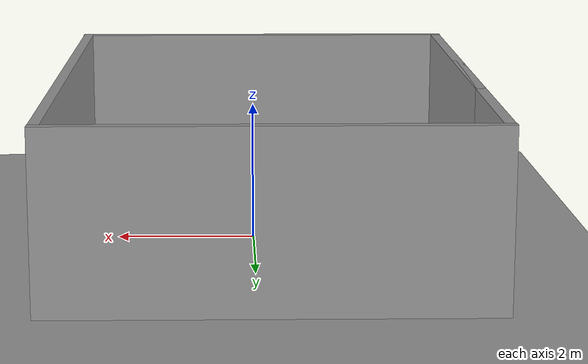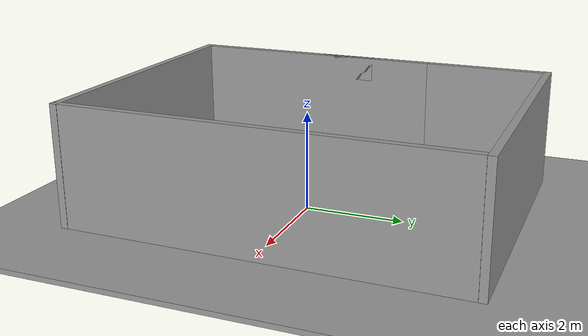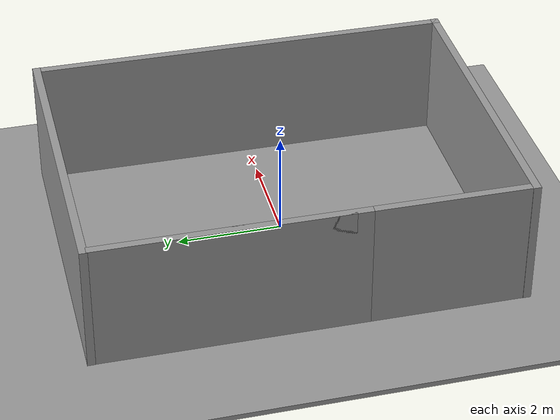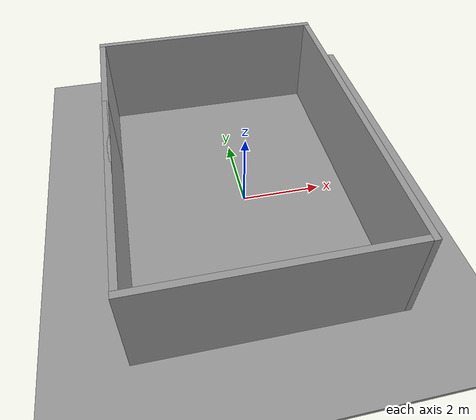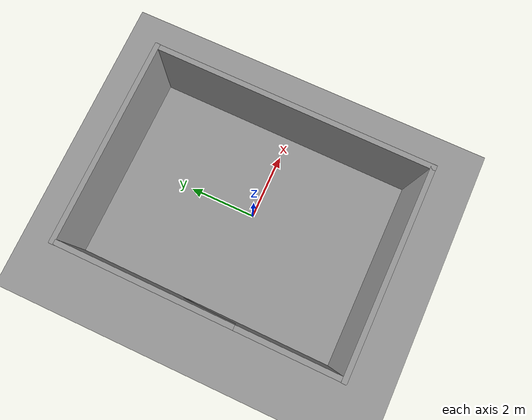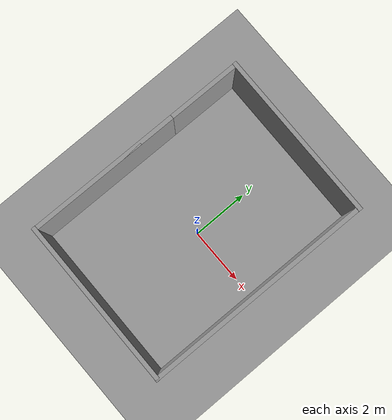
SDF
<sdf version="1.7">
 <world name="default">
  <light name="sun" type="directional">
   <pose>0 0 10 0 -0 0</pose>
   <diffuse>0.8 0.8 0.8 1</diffuse>
   <specular>0.2 0.2 0.2 1</specular>
   <attenuation>
    <range>1000</range>
    <constant>0.9</constant>
    <linear>0.01</linear>
    <quadratic>0.001</quadratic>
   </attenuation>
   <direction>-0.5 0.1 -0.9</direction>
   <spot><inner_angle>0</inner_angle><outer_angle>0</outer_angle><falloff>0</falloff></spot>
  </light>
  <model name="ground_plane">
   <static>1</static>
   <link name="link">
    <collision name="collision">
     <geometry><plane><normal>0 0 1</normal><size>100 100</size></plane></geometry>
     <surface>
      <contact><collide_bitmask>65535</collide_bitmask></contact>
      <friction><ode><mu>100</mu><mu2>50</mu2></ode></friction>
     </surface>
    </collision>
    <visual name="visual">
     <cast_shadows>0</cast_shadows>
     <geometry><plane><normal>0 0 1</normal><size>100 100</size></plane></geometry>
     <material>
      <script>
       <uri>file://install/models/media/materials/scripts/gazebo.material</uri>
       <name>Gazebo/Grey</name>
      </script>
     </material>
    </visual>
   </link>
  </model>
  <gravity>0 0 -9.8</gravity>
  <magnetic_field>6e-06 2.3e-05 -4.2e-05</magnetic_field>
  <atmosphere type="adiabatic"/>
  <physics type="ode">
   <max_step_size>0.001</max_step_size>
   <real_time_factor>1</real_time_factor>
   <real_time_update_rate>1000</real_time_update_rate>
  </physics>
  <scene><ambient>0.4 0.4 0.4 1</ambient><background>0.7 0.7 0.7 1</background><shadows>1</shadows></scene>
  <audio><device>default</device></audio>
  <spherical_coordinates>
   <surface_model>EARTH_WGS84</surface_model>
   <latitude_deg>0</latitude_deg>
   <longitude_deg>0</longitude_deg>
   <elevation>0</elevation>
   <heading_deg>0</heading_deg>
  </spherical_coordinates>
  <model name="ground_plane_0">
   <static>1</static>
   <link name="link">
    <collision name="collision">
     <geometry><plane><normal>0 0 1</normal><size>100 100</size></plane></geometry>
     <surface>
      <contact><collide_bitmask>65535</collide_bitmask></contact>
      <friction><ode><mu>100</mu><mu2>50</mu2></ode></friction>
     </surface>
    </collision>
    <visual name="visual">
     <cast_shadows>0</cast_shadows>
     <geometry><plane><normal>0 0 1</normal><size>100 100</size></plane></geometry>
     <material>
      <script>
       <uri>file://install/models/media/materials/scripts/gazebo.material</uri>
       <name>Gazebo/Grey</name>
      </script>
     </material>
    </visual>
   </link>
   <pose>-1.9891 -2.24563 0 0 -0 0</pose>
  </model>
  <model name="big_room">
   <link name="Wall_0">
    <pose>3e-06 1.16661 0 0 -0 3.14159</pose>
    <inertial>
     <mass>1</mass>
     <inertia><ixx>1</ixx><ixy>0</ixy><ixz>0</ixz><iyy>1</iyy><iyz>0</iyz><izz>1</izz></inertia>
    </inertial>
    <visual name="Wall_0_Visual">
     <pose>0 0 1.25 0 -0 0</pose>
     <geometry><box><size>8 0.15 2.5</size></box></geometry>
     <material>
      <script>
       <uri>file://install/models/media/materials/scripts/gazebo.material</uri>
       <name>Gazebo/Grey</name>
      </script>
      <ambient>1 1 1 1</ambient>
      <shader type="pixel"><normal_map>__default__</normal_map></shader>
      <diffuse>0.7 0.7 0.7 1</diffuse>
      <specular>0.01 0.01 0.01 1</specular>
      <emissive>0 0 0 1</emissive>
     </material>
     <meta><layer>0</layer></meta>
    </visual>
    <collision name="Wall_0_Collision">
     <pose>0 0 1.25 0 -0 0</pose>
     <geometry><box><size>4.5 0.15 2.5</size></box></geometry>
     <surface>
      <friction>
       <ode><mu>1</mu><mu2>1</mu2><fdir1>0 0 0</fdir1><slip1>0</slip1><slip2>0</slip2></ode>
       <torsional>
        <coefficient>1</coefficient>
        <patch_radius>0</patch_radius>
        <surface_radius>0</surface_radius>
        <use_patch_radius>1</use_patch_radius>
        <ode><slip>0</slip></ode>
       </torsional>
      </friction>
      <bounce><restitution_coefficient>0</restitution_coefficient><threshold>1e+06</threshold></bounce>
      <contact>
       <collide_without_contact>0</collide_without_contact>
       <collide_without_contact_bitmask>1</collide_without_contact_bitmask>
       <collide_bitmask>1</collide_bitmask>
       <ode>
        <soft_cfm>0</soft_cfm>
        <soft_erp>0.2</soft_erp>
        <kp>1e+13</kp>
        <kd>1</kd>
        <max_vel>0.01</max_vel>
        <min_depth>0</min_depth>
       </ode>
       <bullet>
        <split_impulse>1</split_impulse>
        <split_impulse_penetration_threshold>-0.01</split_impulse_penetration_threshold>
        <soft_cfm>0</soft_cfm>
        <soft_erp>0.2</soft_erp>
        <kp>1e+13</kp>
        <kd>1</kd>
       </bullet>
      </contact>
     </surface>
    </collision>
   </link>
   <link name="Wall_1">
    <pose>-4.07835 -1.75249 0 0 0 -1.5708</pose>
    <inertial>
     <mass>1</mass>
     <inertia><ixx>1</ixx><ixy>0</ixy><ixz>0</ixz><iyy>1</iyy><iyz>0</iyz><izz>1</izz></inertia>
    </inertial>
    <visual name="Wall_1_Visual">
     <pose>0 0 1.25 0 -0 0</pose>
     <geometry><box><size>6 0.15 2.5</size></box></geometry>
     <material>
      <script>
       <uri>file://install/models/media/materials/scripts/gazebo.material</uri>
       <name>Gazebo/Grey</name>
      </script>
      <ambient>1 1 1 1</ambient>
      <shader type="pixel"><normal_map>__default__</normal_map></shader>
      <diffuse>0.7 0.7 0.7 1</diffuse>
      <specular>0.01 0.01 0.01 1</specular>
      <emissive>0 0 0 1</emissive>
     </material>
     <meta><layer>0</layer></meta>
    </visual>
    <collision name="Wall_1_Collision">
     <pose>0 0 1.25 0 -0 0</pose>
     <geometry><box><size>3.5 0.15 2.5</size></box></geometry>
     <surface>
      <friction>
       <ode><mu>1</mu><mu2>1</mu2><fdir1>0 0 0</fdir1><slip1>0</slip1><slip2>0</slip2></ode>
       <torsional>
        <coefficient>1</coefficient>
        <patch_radius>0</patch_radius>
        <surface_radius>0</surface_radius>
        <use_patch_radius>1</use_patch_radius>
        <ode><slip>0</slip></ode>
       </torsional>
      </friction>
      <bounce><restitution_coefficient>0</restitution_coefficient><threshold>1e+06</threshold></bounce>
      <contact>
       <collide_without_contact>0</collide_without_contact>
       <collide_without_contact_bitmask>1</collide_without_contact_bitmask>
       <collide_bitmask>1</collide_bitmask>
       <ode>
        <soft_cfm>0</soft_cfm>
        <soft_erp>0.2</soft_erp>
        <kp>1e+13</kp>
        <kd>1</kd>
        <max_vel>0.01</max_vel>
        <min_depth>0</min_depth>
       </ode>
       <bullet>
        <split_impulse>1</split_impulse>
        <split_impulse_penetration_threshold>-0.01</split_impulse_penetration_threshold>
        <soft_cfm>0</soft_cfm>
        <soft_erp>0.2</soft_erp>
        <kp>1e+13</kp>
        <kd>1</kd>
       </bullet>
      </contact>
     </surface>
    </collision>
   </link>
   <link name="Wall_2">
    <pose>-0.574601 -4.67021 0 0 -0 0</pose>
    <inertial>
     <mass>1</mass>
     <inertia><ixx>1</ixx><ixy>0</ixy><ixz>0</ixz><iyy>1</iyy><iyz>0</iyz><izz>1</izz></inertia>
    </inertial>
    <visual name="Wall_2_Visual_1">
     <pose>1.74427 0 1.25 0 -0 0</pose>
     <geometry><box><size>5.35 0.15 2.5</size></box></geometry>
     <material>
      <script>
       <uri>file://install/models/media/materials/scripts/gazebo.material</uri>
       <name>Gazebo/Grey</name>
      </script>
      <ambient>1 1 1 1</ambient>
      <shader type="pixel"><normal_map>__default__</normal_map></shader>
      <diffuse>0.7 0.7 0.7 1</diffuse>
      <specular>0.01 0.01 0.01 1</specular>
      <emissive>0 0 0 1</emissive>
     </material>
     <meta><layer>0</layer></meta>
    </visual>
    <visual name="Wall_2_Visual_2">
     <pose>0.788542 0 2.25 0 -0 0</pose>
     <geometry><box><size>0.9 0.15 0.5</size></box></geometry>
     <material>
      <script>
       <uri>file://install/models/media/materials/scripts/gazebo.material</uri>
       <name>Gazebo/Grey</name>
      </script>
      <ambient>1 1 1 1</ambient>
      <shader type="pixel"><normal_map>__default__</normal_map></shader>
      <diffuse>0.7 0.7 0.7 1</diffuse>
      <specular>0.01 0.01 0.01 1</specular>
      <emissive>0 0 0 1</emissive>
     </material>
     <meta><layer>0</layer></meta>
    </visual>
    <visual name="Wall_2_Visual_0">
     <pose>-0.955729 0 1.25 0 -0 0</pose>
     <geometry><box><size>5 0.15 2.5</size></box></geometry>
     <material>
      <script>
       <uri>file://install/models/media/materials/scripts/gazebo.material</uri>
       <name>Gazebo/Grey</name>
      </script>
      <ambient>1 1 1 1</ambient>
      <shader type="pixel"><normal_map>__default__</normal_map></shader>
      <diffuse>0.7 0.7 0.7 1</diffuse>
      <specular>0.01 0.01 0.01 1</specular>
      <emissive>0 0 0 1</emissive>
     </material>
     <meta><layer>0</layer></meta>
    </visual>
    <collision name="Wall_2_Collision_1">
     <pose>1.74427 0 1.25 0 -0 0</pose>
     <geometry><box><size>1.01146 0.15 2.5</size></box></geometry>
     <surface>
      <friction>
       <ode><mu>1</mu><mu2>1</mu2><fdir1>0 0 0</fdir1><slip1>0</slip1><slip2>0</slip2></ode>
       <torsional>
        <coefficient>1</coefficient>
        <patch_radius>0</patch_radius>
        <surface_radius>0</surface_radius>
        <use_patch_radius>1</use_patch_radius>
        <ode><slip>0</slip></ode>
       </torsional>
      </friction>
      <bounce><restitution_coefficient>0</restitution_coefficient><threshold>1e+06</threshold></bounce>
      <contact>
       <collide_without_contact>0</collide_without_contact>
       <collide_without_contact_bitmask>1</collide_without_contact_bitmask>
       <collide_bitmask>1</collide_bitmask>
       <ode>
        <soft_cfm>0</soft_cfm>
        <soft_erp>0.2</soft_erp>
        <kp>1e+13</kp>
        <kd>1</kd>
        <max_vel>0.01</max_vel>
        <min_depth>0</min_depth>
       </ode>
       <bullet>
        <split_impulse>1</split_impulse>
        <split_impulse_penetration_threshold>-0.01</split_impulse_penetration_threshold>
        <soft_cfm>0</soft_cfm>
        <soft_erp>0.2</soft_erp>
        <kp>1e+13</kp>
        <kd>1</kd>
       </bullet>
      </contact>
     </surface>
    </collision>
    <collision name="Wall_2_Collision_2">
     <pose>0.788542 0 2.25 0 -0 0</pose>
     <geometry><box><size>0.9 0.15 0.5</size></box></geometry>
     <surface>
      <friction>
       <ode><mu>1</mu><mu2>1</mu2><fdir1>0 0 0</fdir1><slip1>0</slip1><slip2>0</slip2></ode>
       <torsional>
        <coefficient>1</coefficient>
        <patch_radius>0</patch_radius>
        <surface_radius>0</surface_radius>
        <use_patch_radius>1</use_patch_radius>
        <ode><slip>0</slip></ode>
       </torsional>
      </friction>
      <bounce><restitution_coefficient>0</restitution_coefficient><threshold>1e+06</threshold></bounce>
      <contact>
       <collide_without_contact>0</collide_without_contact>
       <collide_without_contact_bitmask>1</collide_without_contact_bitmask>
       <collide_bitmask>1</collide_bitmask>
       <ode>
        <soft_cfm>0</soft_cfm>
        <soft_erp>0.2</soft_erp>
        <kp>1e+13</kp>
        <kd>1</kd>
        <max_vel>0.01</max_vel>
        <min_depth>0</min_depth>
       </ode>
       <bullet>
        <split_impulse>1</split_impulse>
        <split_impulse_penetration_threshold>-0.01</split_impulse_penetration_threshold>
        <soft_cfm>0</soft_cfm>
        <soft_erp>0.2</soft_erp>
        <kp>1e+13</kp>
        <kd>1</kd>
       </bullet>
      </contact>
     </surface>
    </collision>
    <collision name="Wall_2_Collision_0">
     <pose>-0.955729 0 1.25 0 -0 0</pose>
     <geometry><box><size>2.58854 0.15 2.5</size></box></geometry>
     <surface>
      <friction>
       <ode><mu>1</mu><mu2>1</mu2><fdir1>0 0 0</fdir1><slip1>0</slip1><slip2>0</slip2></ode>
       <torsional>
        <coefficient>1</coefficient>
        <patch_radius>0</patch_radius>
        <surface_radius>0</surface_radius>
        <use_patch_radius>1</use_patch_radius>
        <ode><slip>0</slip></ode>
       </torsional>
      </friction>
      <bounce><restitution_coefficient>0</restitution_coefficient><threshold>1e+06</threshold></bounce>
      <contact>
       <collide_without_contact>0</collide_without_contact>
       <collide_without_contact_bitmask>1</collide_without_contact_bitmask>
       <collide_bitmask>1</collide_bitmask>
       <ode>
        <soft_cfm>0</soft_cfm>
        <soft_erp>0.2</soft_erp>
        <kp>1e+13</kp>
        <kd>1</kd>
        <max_vel>0.01</max_vel>
        <min_depth>0</min_depth>
       </ode>
       <bullet>
        <split_impulse>1</split_impulse>
        <split_impulse_penetration_threshold>-0.01</split_impulse_penetration_threshold>
        <soft_cfm>0</soft_cfm>
        <soft_erp>0.2</soft_erp>
        <kp>1e+13</kp>
        <kd>1</kd>
       </bullet>
      </contact>
     </surface>
    </collision>
   </link>
   <link name="Wall_3">
    <pose>3.92048 -1.75249 0 0 -0 1.5708</pose>
    <inertial>
     <mass>1</mass>
     <inertia><ixx>1</ixx><ixy>0</ixy><ixz>0</ixz><iyy>1</iyy><iyz>0</iyz><izz>1</izz></inertia>
    </inertial>
    <visual name="Wall_3_Visual">
     <pose>0 0 1.25 0 -0 0</pose>
     <geometry><box><size>6 0.15 2.5</size></box></geometry>
     <material>
      <script>
       <uri>file://install/models/media/materials/scripts/gazebo.material</uri>
       <name>Gazebo/Grey</name>
      </script>
      <ambient>1 1 1 1</ambient>
      <shader type="pixel"><normal_map>__default__</normal_map></shader>
      <diffuse>0.7 0.7 0.7 1</diffuse>
      <specular>0.01 0.01 0.01 1</specular>
      <emissive>0 0 0 1</emissive>
     </material>
     <meta><layer>0</layer></meta>
    </visual>
    <collision name="Wall_3_Collision">
     <pose>0 0 1.25 0 -0 0</pose>
     <geometry><box><size>3.5 0.15 2.5</size></box></geometry>
     <surface>
      <friction>
       <ode><mu>1</mu><mu2>1</mu2><fdir1>0 0 0</fdir1><slip1>0</slip1><slip2>0</slip2></ode>
       <torsional>
        <coefficient>1</coefficient>
        <patch_radius>0</patch_radius>
        <surface_radius>0</surface_radius>
        <use_patch_radius>1</use_patch_radius>
        <ode><slip>0</slip></ode>
       </torsional>
      </friction>
      <bounce><restitution_coefficient>0</restitution_coefficient><threshold>1e+06</threshold></bounce>
      <contact>
       <collide_without_contact>0</collide_without_contact>
       <collide_without_contact_bitmask>1</collide_without_contact_bitmask>
       <collide_bitmask>1</collide_bitmask>
       <ode>
        <soft_cfm>0</soft_cfm>
        <soft_erp>0.2</soft_erp>
        <kp>1e+13</kp>
        <kd>1</kd>
        <max_vel>0.01</max_vel>
        <min_depth>0</min_depth>
       </ode>
       <bullet>
        <split_impulse>1</split_impulse>
        <split_impulse_penetration_threshold>-0.01</split_impulse_penetration_threshold>
        <soft_cfm>0</soft_cfm>
        <soft_erp>0.2</soft_erp>
        <kp>1e+13</kp>
        <kd>1</kd>
       </bullet>
      </contact>
     </surface>
    </collision>
   </link>
   <static>1</static>
   <pose>1.56077 0.067107 0 0 0 -1.57688</pose>
  </model>
  <light name="user_point_light_0" type="point">
   <pose>-0.015596 0.050027 1 0 -0 0</pose>
   <diffuse>0.5 0.5 0.5 1</diffuse>
   <specular>0.1 0.1 0.1 1</specular>
   <attenuation>
    <range>20</range>
    <constant>0.5</constant>
    <linear>0.01</linear>
    <quadratic>0.001</quadratic>
   </attenuation>
   <cast_shadows>0</cast_shadows>
   <direction>0 0 -1</direction>
  </light>
 </world>
</sdf>
